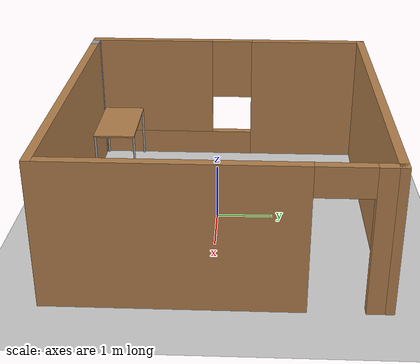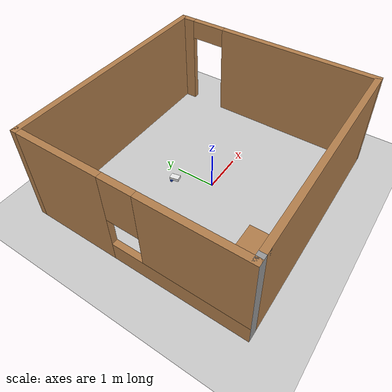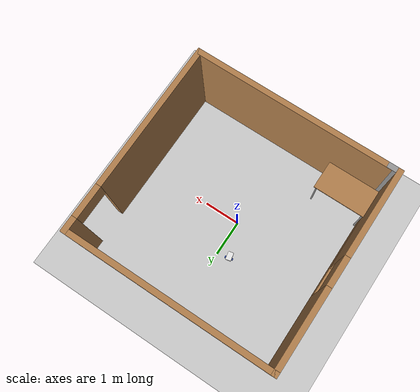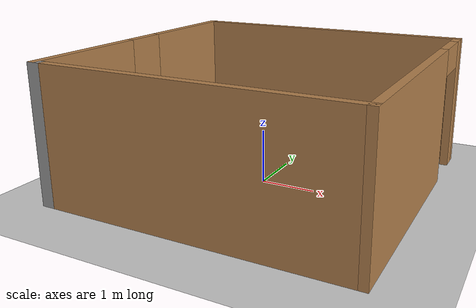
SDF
<sdf version="1.7">
 <world name="default">
  <light name="sun" type="directional">
   <pose>0 0 10 0 -0 0</pose>
   <diffuse>0.8 0.8 0.8 1</diffuse>
   <specular>0.2 0.2 0.2 1</specular>
   <attenuation>
    <range>1000</range>
    <constant>0.9</constant>
    <linear>0.01</linear>
    <quadratic>0.001</quadratic>
   </attenuation>
   <direction>-0.5 0.1 -0.9</direction>
   <spot><inner_angle>0</inner_angle><outer_angle>0</outer_angle><falloff>0</falloff></spot>
  </light>
  <model name="ground_plane">
   <static>1</static>
   <link name="link">
    <collision name="collision">
     <geometry><plane><normal>0 0 1</normal><size>100 100</size></plane></geometry>
     <surface>
      <contact><collide_bitmask>65535</collide_bitmask></contact>
      <friction><ode><mu>100</mu><mu2>50</mu2></ode></friction>
     </surface>
    </collision>
    <visual name="visual">
     <cast_shadows>0</cast_shadows>
     <geometry><plane><normal>0 0 1</normal><size>100 100</size></plane></geometry>
     <material>
      <script><uri>file://media/materials/scripts/gazebo.material</uri><name>Gazebo/Grey</name></script>
     </material>
    </visual>
   </link>
  </model>
  <gravity>0 0 -9.8</gravity>
  <magnetic_field>6e-06 2.3e-05 -4.2e-05</magnetic_field>
  <atmosphere type="adiabatic"/>
  <physics type="ode">
   <max_step_size>0.001</max_step_size>
   <real_time_factor>1</real_time_factor>
   <real_time_update_rate>1000</real_time_update_rate>
  </physics>
  <scene><ambient>0.4 0.4 0.4 1</ambient><background>0.7 0.7 0.7 1</background><shadows>1</shadows></scene>
  <audio><device>default</device></audio>
  <spherical_coordinates>
   <surface_model>EARTH_WGS84</surface_model>
   <latitude_deg>0</latitude_deg>
   <longitude_deg>0</longitude_deg>
   <elevation>0</elevation>
   <heading_deg>0</heading_deg>
  </spherical_coordinates>
  <model name="my_bot">
   <link name="base_link">
    <inertial>
     <pose>0.061667 0 0.03025 0 -0 0</pose>
     <mass>0.6</mass>
     <inertia>
      <ixx>0.00487019</ixx>
      <ixy>0</ixy>
      <ixz>0.00025375</ixz>
      <iyy>0.00527852</iyy>
      <iyz>0</iyz>
      <izz>0.00793333</izz>
     </inertia>
    </inertial>
    <collision name="base_link_fixed_joint_lump__chassis_collision">
     <pose>0.05 0 0.0375 0 -0 0</pose>
     <geometry><box><size>0.23 0.15 0.075</size></box></geometry>
    </collision>
    <collision name="base_link_fixed_joint_lump__caster_wheel_collision_1">
     <pose>0.12 0 -0.006 0 -0 0</pose>
     <geometry><sphere><radius>0.025</radius></sphere></geometry>
     <surface><friction><ode><mu>0.001</mu><mu2>0.001</mu2></ode></friction></surface>
    </collision>
    <visual name="base_link_fixed_joint_lump__chassis_visual">
     <pose>0.05 0 0.0375 0 -0 0</pose>
     <geometry><box><size>0.23 0.15 0.075</size></box></geometry>
     <material>
      <script><name>Gazebo/White</name><uri>file://media/materials/scripts/gazebo.material</uri></script>
     </material>
    </visual>
    <visual name="base_link_fixed_joint_lump__caster_wheel_visual_1">
     <pose>0.12 0 -0.006 0 -0 0</pose>
     <geometry><sphere><radius>0.025</radius></sphere></geometry>
     <material>
      <script><name>Gazebo/White</name><uri>file://media/materials/scripts/gazebo.material</uri></script>
     </material>
    </visual>
   </link>
   <joint name="left_wheel_joint" type="revolute">
    <pose relative_to="base_link">0 0.1 0 -1.5708 0 0</pose>
    <parent>base_link</parent>
    <child>left_wheel</child>
    <axis>
     <xyz>0 0 1</xyz>
     <limit><lower>-1e+16</lower><upper>1e+16</upper></limit>
     <dynamics><spring_reference>0</spring_reference><spring_stiffness>0</spring_stiffness></dynamics>
    </axis>
   </joint>
   <link name="left_wheel">
    <pose relative_to="left_wheel_joint">0 0 0 0 -0 0</pose>
    <inertial>
     <mass>0.1</mass>
     <inertia>
      <ixx>2.92333e-05</ixx>
      <ixy>0</ixy>
      <ixz>0</ixz>
      <iyy>2.92333e-05</iyy>
      <iyz>0</iyz>
      <izz>4.805e-05</izz>
     </inertia>
    </inertial>
    <collision name="left_wheel_collision">
     <geometry><cylinder><length>0.025</length><radius>0.031</radius></cylinder></geometry>
    </collision>
    <visual name="left_wheel_visual">
     <geometry><cylinder><length>0.025</length><radius>0.031</radius></cylinder></geometry>
     <material>
      <script><name>Gazebo/Blue</name><uri>file://media/materials/scripts/gazebo.material</uri></script>
     </material>
    </visual>
   </link>
   <joint name="right_wheel_joint" type="revolute">
    <pose relative_to="base_link">0 -0.1 0 1.5708 -0 0</pose>
    <parent>base_link</parent>
    <child>right_wheel</child>
    <axis>
     <xyz>0 0 -1</xyz>
     <limit><lower>-1e+16</lower><upper>1e+16</upper></limit>
     <dynamics><spring_reference>0</spring_reference><spring_stiffness>0</spring_stiffness></dynamics>
    </axis>
   </joint>
   <link name="right_wheel">
    <pose relative_to="right_wheel_joint">0 0 0 0 -0 0</pose>
    <inertial>
     <mass>0.1</mass>
     <inertia>
      <ixx>2.92333e-05</ixx>
      <ixy>0</ixy>
      <ixz>0</ixz>
      <iyy>2.92333e-05</iyy>
      <iyz>0</iyz>
      <izz>4.805e-05</izz>
     </inertia>
    </inertial>
    <collision name="right_wheel_collision">
     <geometry><cylinder><length>0.025</length><radius>0.031</radius></cylinder></geometry>
    </collision>
    <visual name="right_wheel_visual">
     <geometry><cylinder><length>0.025</length><radius>0.031</radius></cylinder></geometry>
     <material>
      <script><name>Gazebo/Blue</name><uri>file://media/materials/scripts/gazebo.material</uri></script>
     </material>
    </visual>
   </link>
   <static>0</static>
   <plugin name="diff_drive" filename="libgazebo_ros_diff_drive.so">
    <left_joint>left_wheel_joint</left_joint>
    <right_joint>right_wheel_joint</right_joint>
    <wheel_separation>0.2</wheel_separation>
    <wheel_diameter>0.06</wheel_diameter>
    <max_wheel_torque>200</max_wheel_torque>
    <max_wheel_acceleration>10.0</max_wheel_acceleration>
    <odometry_frame>odom</odometry_frame>
    <robot_base_frame>base_link</robot_base_frame>
    <publish_odom>1</publish_odom>
    <publish_odom_tf>1</publish_odom_tf>
    <publish_wheel_tf>1</publish_wheel_tf>
   </plugin>
   <pose>-0.343071 0.923952 0.031 0 2e-06 -1.36743</pose>
  </model>
  <model name="myroom">
   <pose>0.027987 0.08843 0 0 -0 0</pose>
   <link name="Wall_0">
    <collision name="Wall_0_Collision">
     <geometry><box><size>5.5 0.15 2.5</size></box></geometry>
     <pose>0 0 1.25 0 -0 0</pose>
    </collision>
    <visual name="Wall_0_Visual">
     <pose>0 0 1.25 0 -0 0</pose>
     <geometry><box><size>5.5 0.15 2.5</size></box></geometry>
     <material>
      <script><uri>file://media/materials/scripts/gazebo.material</uri><name>Gazebo/Wood</name></script>
      <ambient>1 1 1 1</ambient>
     </material>
     <meta><layer>0</layer></meta>
    </visual>
    <pose>0.125 -2.675 0 0 -0 0</pose>
   </link>
   <link name="Wall_1">
    <pose>2.8 0 0 0 -0 1.5708</pose>
    <visual name="Wall_1_Visual_0">
     <pose>-0.669806 0 1.25 0 -0 0</pose>
     <geometry><box><size>4.16039 0.15 2.5</size></box></geometry>
     <material>
      <script><uri>file://media/materials/scripts/gazebo.material</uri><name>Gazebo/Wood</name></script>
      <ambient>1 1 1 1</ambient>
     </material>
     <meta><layer>0</layer></meta>
    </visual>
    <collision name="Wall_1_Collision_0">
     <geometry><box><size>4.16039 0.15 2.5</size></box></geometry>
     <pose>-0.669806 0 1.25 0 -0 0</pose>
    </collision>
    <visual name="Wall_1_Visual_1">
     <pose>2.53019 0 1.25 0 -0 0</pose>
     <geometry><box><size>0.439611 0.15 2.5</size></box></geometry>
     <material>
      <script><uri>file://media/materials/scripts/gazebo.material</uri><name>Gazebo/Wood</name></script>
      <ambient>1 1 1 1</ambient>
     </material>
     <meta><layer>0</layer></meta>
    </visual>
    <collision name="Wall_1_Collision_1">
     <geometry><box><size>0.439611 0.15 2.5</size></box></geometry>
     <pose>2.53019 0 1.25 0 -0 0</pose>
    </collision>
    <visual name="Wall_1_Visual_2">
     <pose>1.86039 0 2.25 0 -0 0</pose>
     <geometry><box><size>0.9 0.15 0.5</size></box></geometry>
     <material>
      <script><uri>file://media/materials/scripts/gazebo.material</uri><name>Gazebo/Wood</name></script>
      <ambient>1 1 1 1</ambient>
     </material>
     <meta><layer>0</layer></meta>
    </visual>
    <collision name="Wall_1_Collision_2">
     <geometry><box><size>0.9 0.15 0.5</size></box></geometry>
     <pose>1.86039 0 2.25 0 -0 0</pose>
    </collision>
   </link>
   <link name="Wall_2">
    <collision name="Wall_2_Collision">
     <geometry><box><size>5.75 0.15 2.5</size></box></geometry>
     <pose>0 0 1.25 0 -0 0</pose>
    </collision>
    <visual name="Wall_2_Visual">
     <pose>0 0 1.25 0 -0 0</pose>
     <geometry><box><size>5.75 0.15 2.5</size></box></geometry>
     <material>
      <script><uri>file://media/materials/scripts/gazebo.material</uri><name>Gazebo/Wood</name></script>
      <ambient>1 1 1 1</ambient>
     </material>
     <meta><layer>0</layer></meta>
    </visual>
    <pose>-0 2.675 0 0 -0 3.14159</pose>
   </link>
   <link name="Wall_3">
    <pose>-2.8 0 0 0 -0 -1.5708</pose>
    <visual name="Wall_3_Visual_0">
     <pose>-1.6183 0 1.25 0 -0 0</pose>
     <geometry><box><size>2.26341 0.15 2.5</size></box></geometry>
     <material>
      <script><uri>file://media/materials/scripts/gazebo.material</uri><name>Gazebo/Wood</name></script>
      <ambient>1 1 1 1</ambient>
     </material>
     <meta><layer>0</layer></meta>
    </visual>
    <collision name="Wall_3_Collision_0">
     <geometry><box><size>2.26341 0.15 2.5</size></box></geometry>
     <pose>-1.6183 0 1.25 0 -0 0</pose>
    </collision>
    <visual name="Wall_3_Visual_1">
     <pose>1.1317 0 0.25 0 -0 0</pose>
     <geometry><box><size>3.23659 0.15 0.5</size></box></geometry>
     <material>
      <script><uri>file://media/materials/scripts/gazebo.material</uri><name>Gazebo/Wood</name></script>
      <ambient>1 1 1 1</ambient>
     </material>
     <meta><layer>0</layer></meta>
    </visual>
    <collision name="Wall_3_Collision_1">
     <geometry><box><size>3.23659 0.15 0.5</size></box></geometry>
     <pose>1.1317 0 0.25 0 -0 0</pose>
    </collision>
    <visual name="Wall_3_Visual_2">
     <pose>1.5317 0 1.5 0 -0 0</pose>
     <geometry><box><size>2.43659 0.15 2</size></box></geometry>
     <material>
      <script><uri>file://media/materials/scripts/gazebo.material</uri><name>Gazebo/Wood</name></script>
      <ambient>1 1 1 1</ambient>
     </material>
     <meta><layer>0</layer></meta>
    </visual>
    <collision name="Wall_3_Collision_2">
     <geometry><box><size>2.43659 0.15 2</size></box></geometry>
     <pose>1.5317 0 1.5 0 -0 0</pose>
    </collision>
    <visual name="Wall_3_Visual_3">
     <pose>-0.086591 0 1.9 0 -0 0</pose>
     <geometry><box><size>0.8 0.15 1.2</size></box></geometry>
     <material>
      <script><uri>file://media/materials/scripts/gazebo.material</uri><name>Gazebo/Wood</name></script>
      <ambient>1 1 1 1</ambient>
     </material>
     <meta><layer>0</layer></meta>
    </visual>
    <collision name="Wall_3_Collision_3">
     <geometry><box><size>0.8 0.15 1.2</size></box></geometry>
     <pose>-0.086591 0 1.9 0 -0 0</pose>
    </collision>
   </link>
   <link name="Wall_4">
    <collision name="Wall_4_Collision">
     <geometry><box><size>0.4 0.15 2.5</size></box></geometry>
     <pose>0 0 1.25 0 -0 0</pose>
    </collision>
    <visual name="Wall_4_Visual">
     <pose>0 0 1.25 0 -0 0</pose>
     <geometry><box><size>0.4 0.15 2.5</size></box></geometry>
     <material>
      <script><uri>file://media/materials/scripts/gazebo.material</uri><name>Gazebo/Grey</name></script>
      <ambient>1 1 1 1</ambient>
     </material>
     <meta><layer>0</layer></meta>
    </visual>
    <pose>-2.675 -2.675 0 0 -0 0</pose>
   </link>
   <static>1</static>
  </model>
  <model name="table">
   <static>1</static>
   <link name="link">
    <collision name="surface">
     <pose>0 0 1 0 -0 0</pose>
     <geometry><box><size>1.5 0.8 0.03</size></box></geometry>
     <surface><friction><ode><mu>0.6</mu><mu2>0.6</mu2></ode></friction></surface>
    </collision>
    <visual name="visual1">
     <pose>0 0 1 0 -0 0</pose>
     <geometry><box><size>1.5 0.8 0.03</size></box></geometry>
     <material>
      <script><uri>file://media/materials/scripts/gazebo.material</uri><name>Gazebo/Wood</name></script>
     </material>
    </visual>
    <collision name="front_left_leg">
     <pose>0.68 0.38 0.5 0 -0 0</pose>
     <geometry><cylinder><radius>0.02</radius><length>1</length></cylinder></geometry>
    </collision>
    <visual name="front_left_leg">
     <pose>0.68 0.38 0.5 0 -0 0</pose>
     <geometry><cylinder><radius>0.02</radius><length>1</length></cylinder></geometry>
     <material>
      <script><uri>file://media/materials/scripts/gazebo.material</uri><name>Gazebo/Grey</name></script>
     </material>
    </visual>
    <collision name="front_right_leg">
     <pose>0.68 -0.38 0.5 0 -0 0</pose>
     <geometry><cylinder><radius>0.02</radius><length>1</length></cylinder></geometry>
    </collision>
    <visual name="front_right_leg">
     <pose>0.68 -0.38 0.5 0 -0 0</pose>
     <geometry><cylinder><radius>0.02</radius><length>1</length></cylinder></geometry>
     <material>
      <script><uri>file://media/materials/scripts/gazebo.material</uri><name>Gazebo/Grey</name></script>
     </material>
    </visual>
    <collision name="back_right_leg">
     <pose>-0.68 -0.38 0.5 0 -0 0</pose>
     <geometry><cylinder><radius>0.02</radius><length>1</length></cylinder></geometry>
    </collision>
    <visual name="back_right_leg">
     <pose>-0.68 -0.38 0.5 0 -0 0</pose>
     <geometry><cylinder><radius>0.02</radius><length>1</length></cylinder></geometry>
     <material>
      <script><uri>file://media/materials/scripts/gazebo.material</uri><name>Gazebo/Grey</name></script>
     </material>
    </visual>
    <collision name="back_left_leg">
     <pose>-0.68 0.38 0.5 0 -0 0</pose>
     <geometry><cylinder><radius>0.02</radius><length>1</length></cylinder></geometry>
    </collision>
    <visual name="back_left_leg">
     <pose>-0.68 0.38 0.5 0 -0 0</pose>
     <geometry><cylinder><radius>0.02</radius><length>1</length></cylinder></geometry>
     <material>
      <script><uri>file://media/materials/scripts/gazebo.material</uri><name>Gazebo/Grey</name></script>
     </material>
    </visual>
   </link>
   <pose>-1.9813 -2.09195 0 0 -0 0</pose>
  </model>
 </world>
</sdf>
